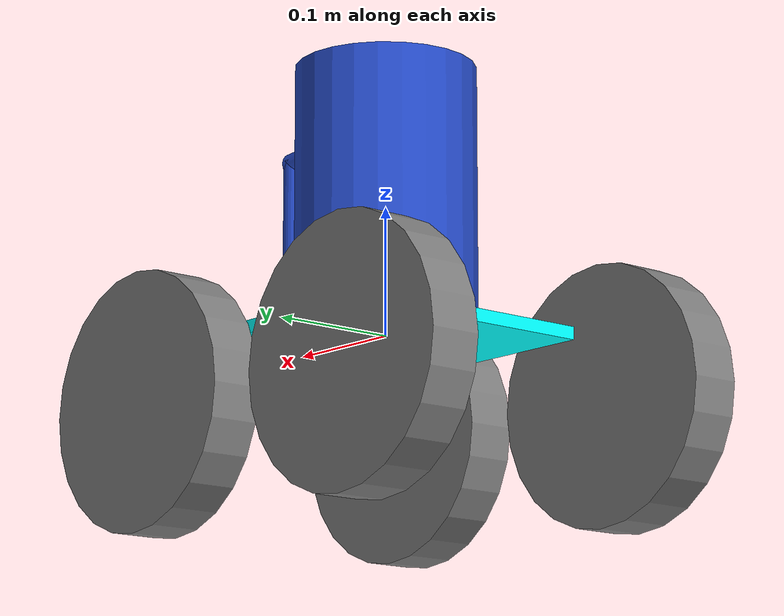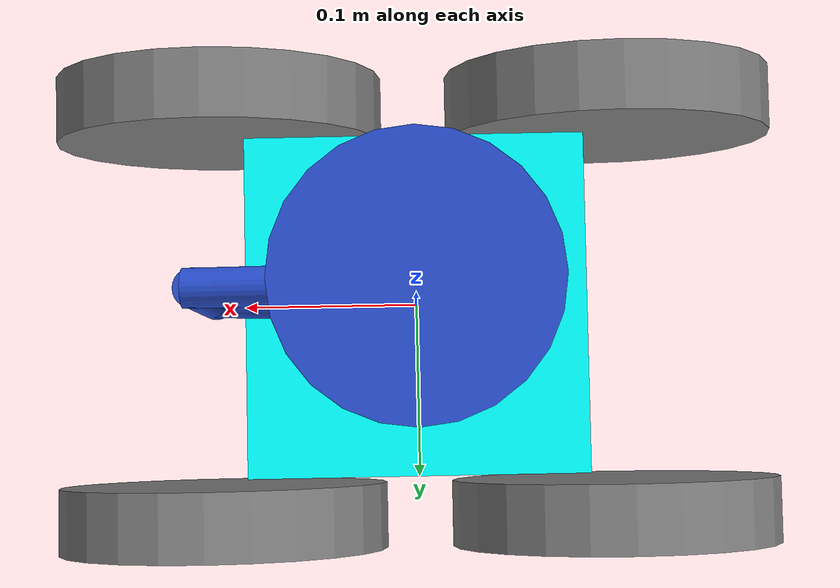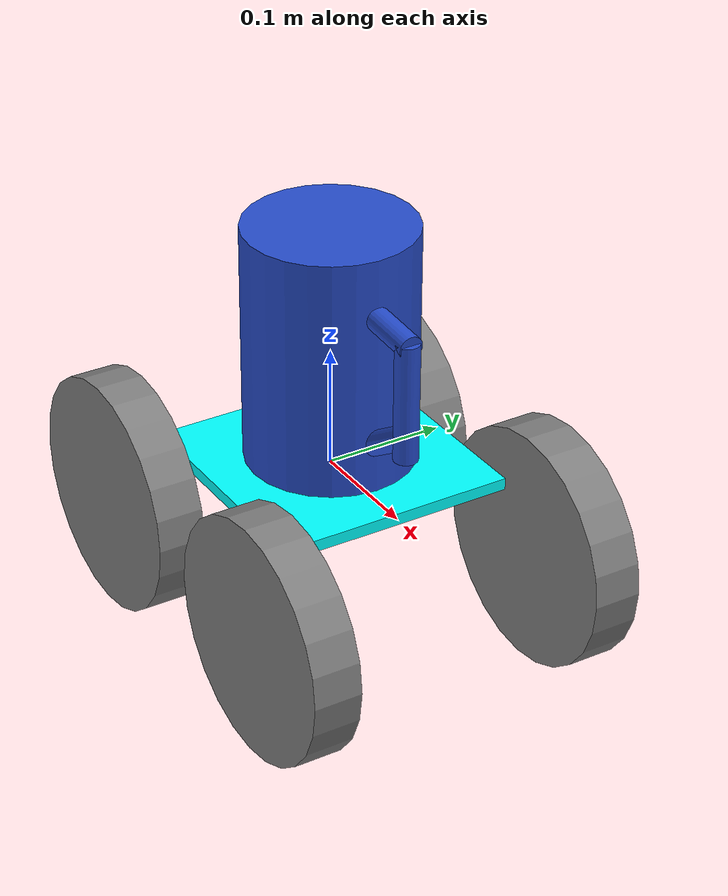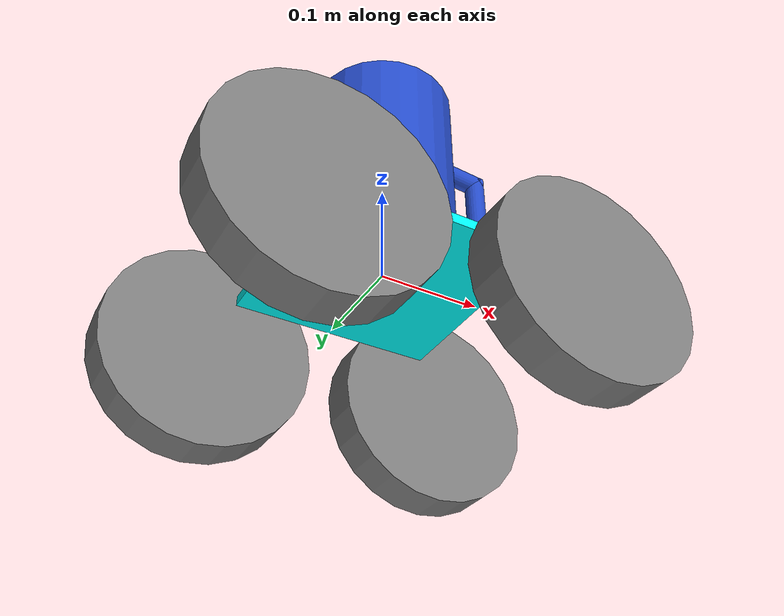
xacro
<?xml version="1.0"?>
<robot name="sam_bot" xmlns:xacro="http://ros.org/wiki/xacro">

  <!-- Define intertial property macros  -->
  <xacro:macro name="box_inertia" params="m w h d">
    <inertial>
      <origin xyz="0 0 0" rpy="${pi/2} 0 ${pi/2}"/>
      <mass value="${m}"/>
      <inertia ixx="${(m/12) * (h*h + d*d)}" ixy="0.0" ixz="0.0" iyy="${(m/12) * (w*w + d*d)}" iyz="0.0" izz="${(m/12) * (w*w + h*h)}"/>
    </inertial>
  </xacro:macro>

  <xacro:macro name="cylinder_inertia" params="m r h">
    <inertial>
      <origin xyz="0 0 0" rpy="${pi/2} 0 0" />
      <mass value="${m}"/>
      <inertia ixx="${(m/12) * (3*r*r + h*h)}" ixy = "0" ixz = "0" iyy="${(m/12) * (3*r*r + h*h)}" iyz = "0" izz="${(m/2) * (r*r)}"/>
    </inertial>
  </xacro:macro>

  <xacro:macro name="sphere_inertia" params="m r">
    <inertial>
      <mass value="${m}"/>
      <inertia ixx="${(2/5) * m * (r*r)}" ixy="0.0" ixz="0.0" iyy="${(2/5) * m * (r*r)}" iyz="0.0" izz="${(2/5) * m * (r*r)}"/>
    </inertial>
  </xacro:macro>

  <!-- Define robot constants -->
  <xacro:property name="base_width" value="0.2"/>
  <xacro:property name="base_length" value="0.2"/>
  <xacro:property name="base_height" value="0.01"/>

  <xacro:property name="wheel_radius" value="0.10"/>
  <xacro:property name="wheel_width" value="0.04"/>
  <xacro:property name="wheel_ygap" value="0.025"/>
  <xacro:property name="wheel_zoff" value="0.05"/>
  <xacro:property name="wheel_xoff" value="0.12"/>

  <xacro:property name="caster_xoff" value="0.14"/>

    <!-- Robot Base -->
  <link name="base_link">
    <visual>
      <geometry>
        <box size="${base_length} ${base_width} ${base_height}"/>
      </geometry>
      <material name="Cyan">
        <color rgba="0 1.0 1.0 1.0"/>
      </material>
    </visual>

    <visual>
        <origin xyz="0.0 0.0 ${base_height+0.1}" rpy="0 0 0"/>
        <geometry>
        <cylinder length="0.2" radius="0.07"/>
        </geometry>
        <material name="blue"/>
    </visual>

    <visual>
        <origin xyz="0.11 0.0 ${base_height+0.1}" rpy="0 0 0"/>
        <geometry>
        <cylinder length="0.1" radius="0.01"/>
        </geometry>
        <material name="blue"/>
    </visual>

    <visual>
        <origin xyz="0.08 0.0 ${base_height+0.05}" rpy="0 1 0"/>
        <geometry>
        <cylinder length="0.07" radius="0.01"/>
        </geometry>
        <material name="blue"/>
    </visual>

    <visual>
        <origin xyz="0.08 0.0 ${base_height+0.15}" rpy="0 -1.5 0"/>
        <geometry>
        <cylinder length="0.07" radius="0.01"/>
        </geometry>
        <material name="blue"/>
    </visual>

    <collision>
      <geometry>
        <box size="${base_length} ${base_width} ${base_height}"/>
      </geometry>
    </collision>

    <collision>
      <origin xyz="0.025 0.0 ${base_height+0.1}" rpy="0 0 0"/>
      <geometry>
        <box size="0.2 0.14 0.2"/>
      </geometry>
    </collision>

    <xacro:box_inertia m="15" w="${base_width}" d="${base_length}" h="${base_height}"/>
  </link>

    <!-- Robot Footprint -->
  <link name="base_footprint"/>

  <joint name="base_joint" type="fixed">
    <parent link="base_link"/>
    <child link="base_footprint"/>
    <origin xyz="0.0 0.0 ${-(wheel_radius+wheel_zoff)}" rpy="0 0 0"/>
  </joint>

    <!-- Wheels -->
  <xacro:macro name="wheel" params="prefix x_reflect y_reflect">
    <link name="${prefix}_link">
      <visual>
        <origin xyz="0 0 0" rpy="${pi/2} 0 0"/>
        <geometry>
            <cylinder radius="${wheel_radius}" length="${wheel_width}"/>
        </geometry>
        <material name="Gray">
          <color rgba="0.5 0.5 0.5 1.0"/>
        </material>
      </visual>

      <collision>
        <origin xyz="0 0 0" rpy="${pi/2} 0 0"/>
        <geometry>
          <cylinder radius="${wheel_radius}" length="${wheel_width}"/>
        </geometry>
      </collision>

      <xacro:cylinder_inertia m="0.5" r="${wheel_radius}" h="${wheel_width}"/>
    </link>

    <joint name="${prefix}_joint" type="continuous">
      <parent link="base_link"/>
      <child link="${prefix}_link"/>
      <origin xyz="${x_reflect*wheel_xoff} ${y_reflect*(base_width/2+wheel_ygap)} ${-wheel_zoff}" rpy="0 0 0"/>
      <axis xyz="0 1 0"/>
    </joint>
  </xacro:macro>

  <xacro:wheel prefix="drivewhl_l" x_reflect="-1" y_reflect="1" />
  <xacro:wheel prefix="drivewhl_r" x_reflect="-1" y_reflect="-1"/>
    <xacro:wheel prefix="drivewhl_b" x_reflect="1" y_reflect="1" />
    <xacro:wheel prefix="drivewhl_f" x_reflect="1" y_reflect="-1" />

</robot>
